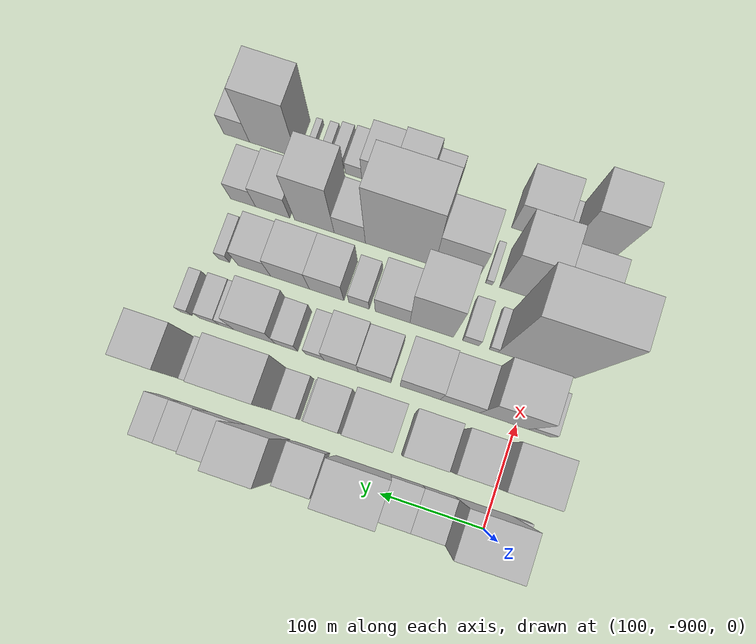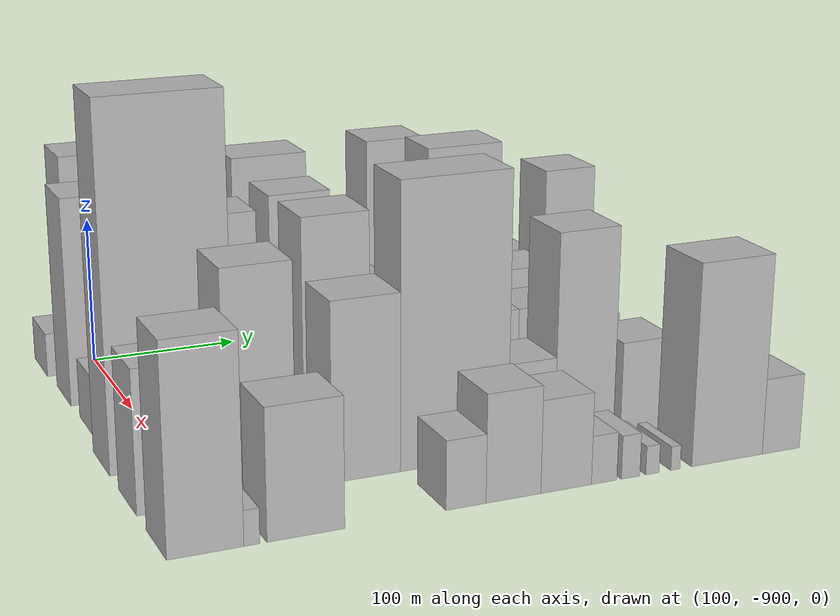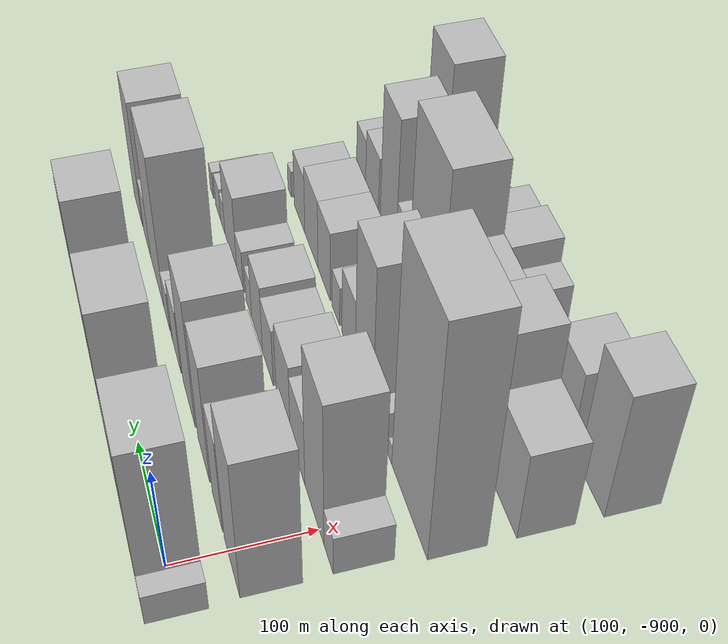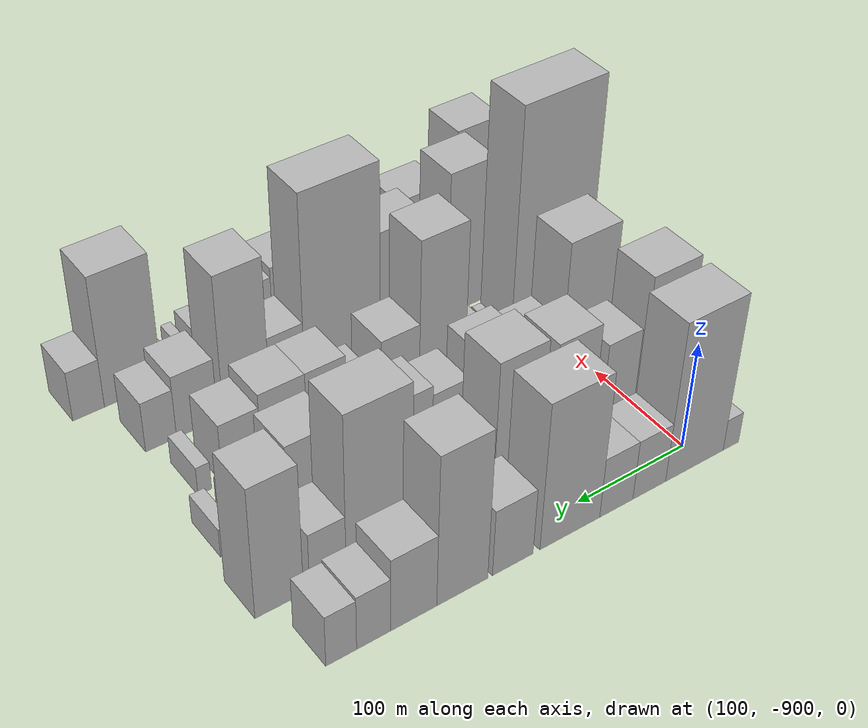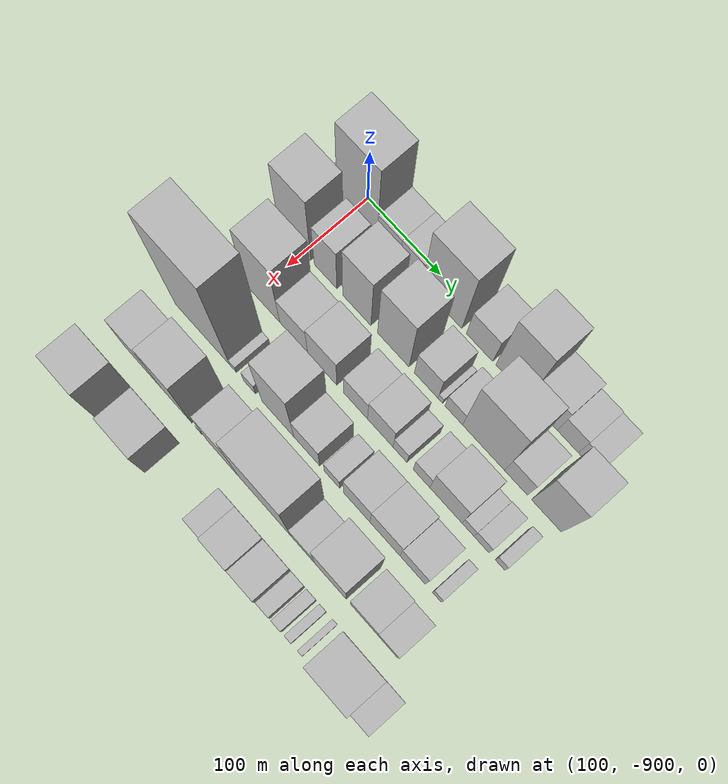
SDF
<sdf version="1.6">
 <world name="default">
  <model name="building_1">
   <static>1</static>
   <pose>100.0000 -929.3016 0 0.000000 0.000000 0.000000</pose>
   <link name="link">
    <pose>0 0 15.00 0 0 0</pose>
    <collision name="collision"><geometry><box><size>40.0000 15.3967 30.0000</size></box></geometry></collision>
    <visual name="visual">
     <cast_shadows>0</cast_shadows>
     <geometry><box><size>40.0000 15.3967 30.0000</size></box></geometry>
     <material>
      <script>
       <uri>model://HANNAS_wall/materials/scripts</uri>
       <uri>model://HANNAS_wall/materials/textures</uri>
       <name>vrc/HANNAS_wall</name>
      </script>
     </material>
    </visual>
   </link>
  </model>
  <model name="building_2">
   <static>1</static>
   <pose>100.0000 -893.4922 0 0.000000 0.000000 0.000000</pose>
   <link name="link">
    <pose>0 0 75.00 0 0 0</pose>
    <collision name="collision"><geometry><box><size>40.0000 56.2221 150.0000</size></box></geometry></collision>
    <visual name="visual">
     <cast_shadows>0</cast_shadows>
     <geometry><box><size>40.0000 56.2221 150.0000</size></box></geometry>
     <material>
      <script>
       <uri>model://HANNAS_wall/materials/scripts</uri>
       <uri>model://HANNAS_wall/materials/textures</uri>
       <name>vrc/HANNAS_wall</name>
      </script>
     </material>
    </visual>
   </link>
  </model>
  <model name="building_3">
   <static>1</static>
   <pose>100.0000 -849.8862 0 0.000000 0.000000 0.000000</pose>
   <link name="link">
    <pose>0 0 28.50 0 0 0</pose>
    <collision name="collision"><geometry><box><size>40.0000 30.9899 57.0000</size></box></geometry></collision>
    <visual name="visual">
     <cast_shadows>0</cast_shadows>
     <geometry><box><size>40.0000 30.9899 57.0000</size></box></geometry>
     <material>
      <script>
       <uri>model://HANNAS_wall/materials/scripts</uri>
       <uri>model://HANNAS_wall/materials/textures</uri>
       <name>vrc/HANNAS_wall</name>
      </script>
     </material>
    </visual>
   </link>
  </model>
  <model name="building_4">
   <static>1</static>
   <pose>100.0000 -818.9883 0 0.000000 0.000000 0.000000</pose>
   <link name="link">
    <pose>0 0 28.50 0 0 0</pose>
    <collision name="collision"><geometry><box><size>40.0000 30.8057 57.0000</size></box></geometry></collision>
    <visual name="visual">
     <cast_shadows>0</cast_shadows>
     <geometry><box><size>40.0000 30.8057 57.0000</size></box></geometry>
     <material>
      <script>
       <uri>model://HANNAS_wall/materials/scripts</uri>
       <uri>model://HANNAS_wall/materials/textures</uri>
       <name>vrc/HANNAS_wall</name>
      </script>
     </material>
    </visual>
   </link>
  </model>
  <model name="building_5">
   <static>1</static>
   <pose>100.0000 -776.6667 0 0.000000 0.000000 0.000000</pose>
   <link name="link">
    <pose>0 0 69.00 0 0 0</pose>
    <collision name="collision"><geometry><box><size>40.0000 53.8375 138.0000</size></box></geometry></collision>
    <visual name="visual">
     <cast_shadows>0</cast_shadows>
     <geometry><box><size>40.0000 53.8375 138.0000</size></box></geometry>
     <material>
      <script>
       <uri>model://HANNAS_wall/materials/scripts</uri>
       <uri>model://HANNAS_wall/materials/textures</uri>
       <name>vrc/HANNAS_wall</name>
      </script>
     </material>
    </visual>
   </link>
  </model>
  <model name="building_6">
   <static>1</static>
   <pose>100.0000 -726.1244 0 0.000000 0.000000 0.000000</pose>
   <link name="link">
    <pose>0 0 31.50 0 0 0</pose>
    <collision name="collision"><geometry><box><size>40.0000 35.2472 63.0000</size></box></geometry></collision>
    <visual name="visual">
     <cast_shadows>0</cast_shadows>
     <geometry><box><size>40.0000 35.2472 63.0000</size></box></geometry>
     <material>
      <script>
       <uri>model://HANNAS_wall/materials/scripts</uri>
       <uri>model://HANNAS_wall/materials/textures</uri>
       <name>vrc/HANNAS_wall</name>
      </script>
     </material>
    </visual>
   </link>
  </model>
  <model name="building_7">
   <static>1</static>
   <pose>100.0000 -683.0421 0 0.000000 0.000000 0.000000</pose>
   <link name="link">
    <pose>0 0 70.50 0 0 0</pose>
    <collision name="collision"><geometry><box><size>40.0000 42.9173 141.0000</size></box></geometry></collision>
    <visual name="visual">
     <cast_shadows>0</cast_shadows>
     <geometry><box><size>40.0000 42.9173 141.0000</size></box></geometry>
     <material>
      <script>
       <uri>model://HANNAS_wall/materials/scripts</uri>
       <uri>model://HANNAS_wall/materials/textures</uri>
       <name>vrc/HANNAS_wall</name>
      </script>
     </material>
    </visual>
   </link>
  </model>
  <model name="building_8">
   <static>1</static>
   <pose>100.0000 -642.8256 0 0.000000 0.000000 0.000000</pose>
   <link name="link">
    <pose>0 0 34.50 0 0 0</pose>
    <collision name="collision"><geometry><box><size>40.0000 37.5158 69.0000</size></box></geometry></collision>
    <visual name="visual">
     <cast_shadows>0</cast_shadows>
     <geometry><box><size>40.0000 37.5158 69.0000</size></box></geometry>
     <material>
      <script>
       <uri>model://HANNAS_wall/materials/scripts</uri>
       <uri>model://HANNAS_wall/materials/textures</uri>
       <name>vrc/HANNAS_wall</name>
      </script>
     </material>
    </visual>
   </link>
  </model>
  <model name="building_9">
   <static>1</static>
   <pose>100.0000 -610.5062 0 0.000000 0.000000 0.000000</pose>
   <link name="link">
    <pose>0 0 25.50 0 0 0</pose>
    <collision name="collision"><geometry><box><size>40.0000 27.1230 51.0000</size></box></geometry></collision>
    <visual name="visual">
     <cast_shadows>0</cast_shadows>
     <geometry><box><size>40.0000 27.1230 51.0000</size></box></geometry>
     <material>
      <script>
       <uri>model://HANNAS_wall/materials/scripts</uri>
       <uri>model://HANNAS_wall/materials/textures</uri>
       <name>vrc/HANNAS_wall</name>
      </script>
     </material>
    </visual>
   </link>
  </model>
  <model name="building_10">
   <static>1</static>
   <pose>100.0000 -584.9254 0 0.000000 0.000000 0.000000</pose>
   <link name="link">
    <pose>0 0 24.00 0 0 0</pose>
    <collision name="collision"><geometry><box><size>40.0000 24.0384 48.0000</size></box></geometry></collision>
    <visual name="visual">
     <cast_shadows>0</cast_shadows>
     <geometry><box><size>40.0000 24.0384 48.0000</size></box></geometry>
     <material>
      <script>
       <uri>model://HANNAS_wall/materials/scripts</uri>
       <uri>model://HANNAS_wall/materials/textures</uri>
       <name>vrc/HANNAS_wall</name>
      </script>
     </material>
    </visual>
   </link>
  </model>
  <model name="building_52">
   <static>1</static>
   <pose>160.0000 -912.4431 0 0.000000 0.000000 0.000000</pose>
   <link name="link">
    <pose>0 0 69.00 0 0 0</pose>
    <collision name="collision"><geometry><box><size>40.0000 45.1138 138.0000</size></box></geometry></collision>
    <visual name="visual">
     <cast_shadows>0</cast_shadows>
     <geometry><box><size>40.0000 45.1138 138.0000</size></box></geometry>
     <material>
      <script>
       <uri>model://HANNAS_wall/materials/scripts</uri>
       <uri>model://HANNAS_wall/materials/textures</uri>
       <name>vrc/HANNAS_wall</name>
      </script>
     </material>
    </visual>
   </link>
  </model>
  <model name="building_53">
   <static>1</static>
   <pose>160.0000 -869.1691 0 0.000000 0.000000 0.000000</pose>
   <link name="link">
    <pose>0 0 46.50 0 0 0</pose>
    <collision name="collision"><geometry><box><size>40.0000 31.4341 93.0000</size></box></geometry></collision>
    <visual name="visual">
     <cast_shadows>0</cast_shadows>
     <geometry><box><size>40.0000 31.4341 93.0000</size></box></geometry>
     <material>
      <script>
       <uri>model://HANNAS_wall/materials/scripts</uri>
       <uri>model://HANNAS_wall/materials/textures</uri>
       <name>vrc/HANNAS_wall</name>
      </script>
     </material>
    </visual>
   </link>
  </model>
  <model name="building_54">
   <static>1</static>
   <pose>160.0000 -826.1210 0 0.000000 0.000000 0.000000</pose>
   <link name="link">
    <pose>0 0 58.50 0 0 0</pose>
    <collision name="collision"><geometry><box><size>40.0000 38.6621 117.0000</size></box></geometry></collision>
    <visual name="visual">
     <cast_shadows>0</cast_shadows>
     <geometry><box><size>40.0000 38.6621 117.0000</size></box></geometry>
     <material>
      <script>
       <uri>model://HANNAS_wall/materials/scripts</uri>
       <uri>model://HANNAS_wall/materials/textures</uri>
       <name>vrc/HANNAS_wall</name>
      </script>
     </material>
    </visual>
   </link>
  </model>
  <model name="building_55">
   <static>1</static>
   <pose>160.0000 -776.3998 0 0.000000 0.000000 0.000000</pose>
   <link name="link">
    <pose>0 0 63.00 0 0 0</pose>
    <collision name="collision"><geometry><box><size>40.0000 42.7803 126.0000</size></box></geometry></collision>
    <visual name="visual">
     <cast_shadows>0</cast_shadows>
     <geometry><box><size>40.0000 42.7803 126.0000</size></box></geometry>
     <material>
      <script>
       <uri>model://HANNAS_wall/materials/scripts</uri>
       <uri>model://HANNAS_wall/materials/textures</uri>
       <name>vrc/HANNAS_wall</name>
      </script>
     </material>
    </visual>
   </link>
  </model>
  <model name="building_56">
   <static>1</static>
   <pose>160.0000 -732.1284 0 0.000000 0.000000 0.000000</pose>
   <link name="link">
    <pose>0 0 31.50 0 0 0</pose>
    <collision name="collision"><geometry><box><size>40.0000 31.7627 63.0000</size></box></geometry></collision>
    <visual name="visual">
     <cast_shadows>0</cast_shadows>
     <geometry><box><size>40.0000 31.7627 63.0000</size></box></geometry>
     <material>
      <script>
       <uri>model://HANNAS_wall/materials/scripts</uri>
       <uri>model://HANNAS_wall/materials/textures</uri>
       <name>vrc/HANNAS_wall</name>
      </script>
     </material>
    </visual>
   </link>
  </model>
  <model name="building_57">
   <static>1</static>
   <pose>160.0000 -713.1230 0 0.000000 0.000000 0.000000</pose>
   <link name="link">
    <pose>0 0 7.50 0 0 0</pose>
    <collision name="collision"><geometry><box><size>40.0000 6.2481 15.0000</size></box></geometry></collision>
    <visual name="visual">
     <cast_shadows>0</cast_shadows>
     <geometry><box><size>40.0000 6.2481 15.0000</size></box></geometry>
     <material>
      <script>
       <uri>model://HANNAS_wall/materials/scripts</uri>
       <uri>model://HANNAS_wall/materials/textures</uri>
       <name>vrc/HANNAS_wall</name>
      </script>
     </material>
    </visual>
   </link>
  </model>
  <model name="building_58">
   <static>1</static>
   <pose>160.0000 -695.3463 0 0.000000 0.000000 0.000000</pose>
   <link name="link">
    <pose>0 0 19.50 0 0 0</pose>
    <collision name="collision"><geometry><box><size>40.0000 23.3052 39.0000</size></box></geometry></collision>
    <visual name="visual">
     <cast_shadows>0</cast_shadows>
     <geometry><box><size>40.0000 23.3052 39.0000</size></box></geometry>
     <material>
      <script>
       <uri>model://HANNAS_wall/materials/scripts</uri>
       <uri>model://HANNAS_wall/materials/textures</uri>
       <name>vrc/HANNAS_wall</name>
      </script>
     </material>
    </visual>
   </link>
  </model>
  <model name="building_59">
   <static>1</static>
   <pose>160.0000 -656.1597 0 0.000000 0.000000 0.000000</pose>
   <link name="link">
    <pose>0 0 73.50 0 0 0</pose>
    <collision name="collision"><geometry><box><size>40.0000 55.0679 147.0000</size></box></geometry></collision>
    <visual name="visual">
     <cast_shadows>0</cast_shadows>
     <geometry><box><size>40.0000 55.0679 147.0000</size></box></geometry>
     <material>
      <script>
       <uri>model://HANNAS_wall/materials/scripts</uri>
       <uri>model://HANNAS_wall/materials/textures</uri>
       <name>vrc/HANNAS_wall</name>
      </script>
     </material>
    </visual>
   </link>
  </model>
  <model name="building_60">
   <static>1</static>
   <pose>160.0000 -613.8279 0 0.000000 0.000000 0.000000</pose>
   <link name="link">
    <pose>0 0 27.00 0 0 0</pose>
    <collision name="collision"><geometry><box><size>40.0000 29.5957 54.0000</size></box></geometry></collision>
    <visual name="visual">
     <cast_shadows>0</cast_shadows>
     <geometry><box><size>40.0000 29.5957 54.0000</size></box></geometry>
     <material>
      <script>
       <uri>model://HANNAS_wall/materials/scripts</uri>
       <uri>model://HANNAS_wall/materials/textures</uri>
       <name>vrc/HANNAS_wall</name>
      </script>
     </material>
    </visual>
   </link>
  </model>
  <model name="building_61">
   <static>1</static>
   <pose>160.0000 -574.8595 0 0.000000 0.000000 0.000000</pose>
   <link name="link">
    <pose>0 0 61.50 0 0 0</pose>
    <collision name="collision"><geometry><box><size>40.0000 38.3412 123.0000</size></box></geometry></collision>
    <visual name="visual">
     <cast_shadows>0</cast_shadows>
     <geometry><box><size>40.0000 38.3412 123.0000</size></box></geometry>
     <material>
      <script>
       <uri>model://HANNAS_wall/materials/scripts</uri>
       <uri>model://HANNAS_wall/materials/textures</uri>
       <name>vrc/HANNAS_wall</name>
      </script>
     </material>
    </visual>
   </link>
  </model>
  <model name="building_107">
   <static>1</static>
   <pose>220.0000 -922.7715 0 0.000000 0.000000 0.000000</pose>
   <link name="link">
    <pose>0 0 19.50 0 0 0</pose>
    <collision name="collision"><geometry><box><size>40.0000 22.4570 39.0000</size></box></geometry></collision>
    <visual name="visual">
     <cast_shadows>0</cast_shadows>
     <geometry><box><size>40.0000 22.4570 39.0000</size></box></geometry>
     <material>
      <script>
       <uri>model://HANNAS_wall/materials/scripts</uri>
       <uri>model://HANNAS_wall/materials/textures</uri>
       <name>vrc/HANNAS_wall</name>
      </script>
     </material>
    </visual>
   </link>
  </model>
  <model name="building_108">
   <static>1</static>
   <pose>220.0000 -887.7573 0 0.000000 0.000000 0.000000</pose>
   <link name="link">
    <pose>0 0 70.50 0 0 0</pose>
    <collision name="collision"><geometry><box><size>40.0000 47.5714 141.0000</size></box></geometry></collision>
    <visual name="visual">
     <cast_shadows>0</cast_shadows>
     <geometry><box><size>40.0000 47.5714 141.0000</size></box></geometry>
     <material>
      <script>
       <uri>model://HANNAS_wall/materials/scripts</uri>
       <uri>model://HANNAS_wall/materials/textures</uri>
       <name>vrc/HANNAS_wall</name>
      </script>
     </material>
    </visual>
   </link>
  </model>
  <model name="building_109">
   <static>1</static>
   <pose>220.0000 -844.7055 0 0.000000 0.000000 0.000000</pose>
   <link name="link">
    <pose>0 0 33.00 0 0 0</pose>
    <collision name="collision"><geometry><box><size>40.0000 38.5321 66.0000</size></box></geometry></collision>
    <visual name="visual">
     <cast_shadows>0</cast_shadows>
     <geometry><box><size>40.0000 38.5321 66.0000</size></box></geometry>
     <material>
      <script>
       <uri>model://HANNAS_wall/materials/scripts</uri>
       <uri>model://HANNAS_wall/materials/textures</uri>
       <name>vrc/HANNAS_wall</name>
      </script>
     </material>
    </visual>
   </link>
  </model>
  <model name="building_110">
   <static>1</static>
   <pose>220.0000 -805.4856 0 0.000000 0.000000 0.000000</pose>
   <link name="link">
    <pose>0 0 37.50 0 0 0</pose>
    <collision name="collision"><geometry><box><size>40.0000 39.9078 75.0000</size></box></geometry></collision>
    <visual name="visual">
     <cast_shadows>0</cast_shadows>
     <geometry><box><size>40.0000 39.9078 75.0000</size></box></geometry>
     <material>
      <script>
       <uri>model://HANNAS_wall/materials/scripts</uri>
       <uri>model://HANNAS_wall/materials/textures</uri>
       <name>vrc/HANNAS_wall</name>
      </script>
     </material>
    </visual>
   </link>
  </model>
  <model name="building_111">
   <static>1</static>
   <pose>220.0000 -760.3452 0 0.000000 0.000000 0.000000</pose>
   <link name="link">
    <pose>0 0 28.50 0 0 0</pose>
    <collision name="collision"><geometry><box><size>40.0000 32.3730 57.0000</size></box></geometry></collision>
    <visual name="visual">
     <cast_shadows>0</cast_shadows>
     <geometry><box><size>40.0000 32.3730 57.0000</size></box></geometry>
     <material>
      <script>
       <uri>model://HANNAS_wall/materials/scripts</uri>
       <uri>model://HANNAS_wall/materials/textures</uri>
       <name>vrc/HANNAS_wall</name>
      </script>
     </material>
    </visual>
   </link>
  </model>
  <model name="building_112">
   <static>1</static>
   <pose>220.0000 -727.1563 0 0.000000 0.000000 0.000000</pose>
   <link name="link">
    <pose>0 0 33.00 0 0 0</pose>
    <collision name="collision"><geometry><box><size>40.0000 34.0048 66.0000</size></box></geometry></collision>
    <visual name="visual">
     <cast_shadows>0</cast_shadows>
     <geometry><box><size>40.0000 34.0048 66.0000</size></box></geometry>
     <material>
      <script>
       <uri>model://HANNAS_wall/materials/scripts</uri>
       <uri>model://HANNAS_wall/materials/textures</uri>
       <name>vrc/HANNAS_wall</name>
      </script>
     </material>
    </visual>
   </link>
  </model>
  <model name="building_113">
   <static>1</static>
   <pose>220.0000 -700.8088 0 0.000000 0.000000 0.000000</pose>
   <link name="link">
    <pose>0 0 18.00 0 0 0</pose>
    <collision name="collision"><geometry><box><size>40.0000 18.6902 36.0000</size></box></geometry></collision>
    <visual name="visual">
     <cast_shadows>0</cast_shadows>
     <geometry><box><size>40.0000 18.6902 36.0000</size></box></geometry>
     <material>
      <script>
       <uri>model://HANNAS_wall/materials/scripts</uri>
       <uri>model://HANNAS_wall/materials/textures</uri>
       <name>vrc/HANNAS_wall</name>
      </script>
     </material>
    </visual>
   </link>
  </model>
  <model name="building_114">
   <static>1</static>
   <pose>220.0000 -672.4171 0 0.000000 0.000000 0.000000</pose>
   <link name="link">
    <pose>0 0 21.00 0 0 0</pose>
    <collision name="collision"><geometry><box><size>40.0000 22.0933 42.0000</size></box></geometry></collision>
    <visual name="visual">
     <cast_shadows>0</cast_shadows>
     <geometry><box><size>40.0000 22.0933 42.0000</size></box></geometry>
     <material>
      <script>
       <uri>model://HANNAS_wall/materials/scripts</uri>
       <uri>model://HANNAS_wall/materials/textures</uri>
       <name>vrc/HANNAS_wall</name>
      </script>
     </material>
    </visual>
   </link>
  </model>
  <model name="building_115">
   <static>1</static>
   <pose>220.0000 -640.3856 0 0.000000 0.000000 0.000000</pose>
   <link name="link">
    <pose>0 0 37.50 0 0 0</pose>
    <collision name="collision"><geometry><box><size>40.0000 41.9696 75.0000</size></box></geometry></collision>
    <visual name="visual">
     <cast_shadows>0</cast_shadows>
     <geometry><box><size>40.0000 41.9696 75.0000</size></box></geometry>
     <material>
      <script>
       <uri>model://HANNAS_wall/materials/scripts</uri>
       <uri>model://HANNAS_wall/materials/textures</uri>
       <name>vrc/HANNAS_wall</name>
      </script>
     </material>
    </visual>
   </link>
  </model>
  <model name="building_116">
   <static>1</static>
   <pose>220.0000 -611.7557 0 0.000000 0.000000 0.000000</pose>
   <link name="link">
    <pose>0 0 15.00 0 0 0</pose>
    <collision name="collision"><geometry><box><size>40.0000 15.2903 30.0000</size></box></geometry></collision>
    <visual name="visual">
     <cast_shadows>0</cast_shadows>
     <geometry><box><size>40.0000 15.2903 30.0000</size></box></geometry>
     <material>
      <script>
       <uri>model://HANNAS_wall/materials/scripts</uri>
       <uri>model://HANNAS_wall/materials/textures</uri>
       <name>vrc/HANNAS_wall</name>
      </script>
     </material>
    </visual>
   </link>
  </model>
  <model name="building_117">
   <static>1</static>
   <pose>220.0000 -594.4015 0 0.000000 0.000000 0.000000</pose>
   <link name="link">
    <pose>0 0 16.50 0 0 0</pose>
    <collision name="collision"><geometry><box><size>40.0000 19.4182 33.0000</size></box></geometry></collision>
    <visual name="visual">
     <cast_shadows>0</cast_shadows>
     <geometry><box><size>40.0000 19.4182 33.0000</size></box></geometry>
     <material>
      <script>
       <uri>model://HANNAS_wall/materials/scripts</uri>
       <uri>model://HANNAS_wall/materials/textures</uri>
       <name>vrc/HANNAS_wall</name>
      </script>
     </material>
    </visual>
   </link>
  </model>
  <model name="building_118">
   <static>1</static>
   <pose>220.0000 -570.5950 0 0.000000 0.000000 0.000000</pose>
   <link name="link">
    <pose>0 0 13.50 0 0 0</pose>
    <collision name="collision"><geometry><box><size>40.0000 12.1947 27.0000</size></box></geometry></collision>
    <visual name="visual">
     <cast_shadows>0</cast_shadows>
     <geometry><box><size>40.0000 12.1947 27.0000</size></box></geometry>
     <material>
      <script>
       <uri>model://HANNAS_wall/materials/scripts</uri>
       <uri>model://HANNAS_wall/materials/textures</uri>
       <name>vrc/HANNAS_wall</name>
      </script>
     </material>
    </visual>
   </link>
  </model>
  <model name="building_164">
   <static>1</static>
   <pose>280.0000 -901.7211 0 0.000000 0.000000 0.000000</pose>
   <link name="link">
    <pose>0 0 112.50 0 0 0</pose>
    <collision name="collision"><geometry><box><size>40.0000 76.5577 225.0000</size></box></geometry></collision>
    <visual name="visual">
     <cast_shadows>0</cast_shadows>
     <geometry><box><size>40.0000 76.5577 225.0000</size></box></geometry>
     <material>
      <script>
       <uri>model://HANNAS_wall/materials/scripts</uri>
       <uri>model://HANNAS_wall/materials/textures</uri>
       <name>vrc/HANNAS_wall</name>
      </script>
     </material>
    </visual>
   </link>
  </model>
  <model name="building_165">
   <static>1</static>
   <pose>280.0000 -858.9648 0 0.000000 0.000000 0.000000</pose>
   <link name="link">
    <pose>0 0 9.00 0 0 0</pose>
    <collision name="collision"><geometry><box><size>40.0000 8.9550 18.0000</size></box></geometry></collision>
    <visual name="visual">
     <cast_shadows>0</cast_shadows>
     <geometry><box><size>40.0000 8.9550 18.0000</size></box></geometry>
     <material>
      <script>
       <uri>model://HANNAS_wall/materials/scripts</uri>
       <uri>model://HANNAS_wall/materials/textures</uri>
       <name>vrc/HANNAS_wall</name>
      </script>
     </material>
    </visual>
   </link>
  </model>
  <model name="building_166">
   <static>1</static>
   <pose>280.0000 -836.1534 0 0.000000 0.000000 0.000000</pose>
   <link name="link">
    <pose>0 0 15.00 0 0 0</pose>
    <collision name="collision"><geometry><box><size>40.0000 16.6679 30.0000</size></box></geometry></collision>
    <visual name="visual">
     <cast_shadows>0</cast_shadows>
     <geometry><box><size>40.0000 16.6679 30.0000</size></box></geometry>
     <material>
      <script>
       <uri>model://HANNAS_wall/materials/scripts</uri>
       <uri>model://HANNAS_wall/materials/textures</uri>
       <name>vrc/HANNAS_wall</name>
      </script>
     </material>
    </visual>
   </link>
  </model>
  <model name="building_167">
   <static>1</static>
   <pose>280.0000 -797.0618 0 0.000000 0.000000 0.000000</pose>
   <link name="link">
    <pose>0 0 72.00 0 0 0</pose>
    <collision name="collision"><geometry><box><size>40.0000 43.5152 144.0000</size></box></geometry></collision>
    <visual name="visual">
     <cast_shadows>0</cast_shadows>
     <geometry><box><size>40.0000 43.5152 144.0000</size></box></geometry>
     <material>
      <script>
       <uri>model://HANNAS_wall/materials/scripts</uri>
       <uri>model://HANNAS_wall/materials/textures</uri>
       <name>vrc/HANNAS_wall</name>
      </script>
     </material>
    </visual>
   </link>
  </model>
  <model name="building_168">
   <static>1</static>
   <pose>280.0000 -757.8696 0 0.000000 0.000000 0.000000</pose>
   <link name="link">
    <pose>0 0 33.00 0 0 0</pose>
    <collision name="collision"><geometry><box><size>40.0000 34.8691 66.0000</size></box></geometry></collision>
    <visual name="visual">
     <cast_shadows>0</cast_shadows>
     <geometry><box><size>40.0000 34.8691 66.0000</size></box></geometry>
     <material>
      <script>
       <uri>model://HANNAS_wall/materials/scripts</uri>
       <uri>model://HANNAS_wall/materials/textures</uri>
       <name>vrc/HANNAS_wall</name>
      </script>
     </material>
    </visual>
   </link>
  </model>
  <model name="building_169">
   <static>1</static>
   <pose>280.0000 -724.1842 0 0.000000 0.000000 0.000000</pose>
   <link name="link">
    <pose>0 0 19.50 0 0 0</pose>
    <collision name="collision"><geometry><box><size>40.0000 20.5017 39.0000</size></box></geometry></collision>
    <visual name="visual">
     <cast_shadows>0</cast_shadows>
     <geometry><box><size>40.0000 20.5017 39.0000</size></box></geometry>
     <material>
      <script>
       <uri>model://HANNAS_wall/materials/scripts</uri>
       <uri>model://HANNAS_wall/materials/textures</uri>
       <name>vrc/HANNAS_wall</name>
      </script>
     </material>
    </visual>
   </link>
  </model>
  <model name="building_170">
   <static>1</static>
   <pose>280.0000 -691.3929 0 0.000000 0.000000 0.000000</pose>
   <link name="link">
    <pose>0 0 34.50 0 0 0</pose>
    <collision name="collision"><geometry><box><size>40.0000 35.0808 69.0000</size></box></geometry></collision>
    <visual name="visual">
     <cast_shadows>0</cast_shadows>
     <geometry><box><size>40.0000 35.0808 69.0000</size></box></geometry>
     <material>
      <script>
       <uri>model://HANNAS_wall/materials/scripts</uri>
       <uri>model://HANNAS_wall/materials/textures</uri>
       <name>vrc/HANNAS_wall</name>
      </script>
     </material>
    </visual>
   </link>
  </model>
  <model name="building_171">
   <static>1</static>
   <pose>280.0000 -654.1789 0 0.000000 0.000000 0.000000</pose>
   <link name="link">
    <pose>0 0 34.50 0 0 0</pose>
    <collision name="collision"><geometry><box><size>40.0000 39.3473 69.0000</size></box></geometry></collision>
    <visual name="visual">
     <cast_shadows>0</cast_shadows>
     <geometry><box><size>40.0000 39.3473 69.0000</size></box></geometry>
     <material>
      <script>
       <uri>model://HANNAS_wall/materials/scripts</uri>
       <uri>model://HANNAS_wall/materials/textures</uri>
       <name>vrc/HANNAS_wall</name>
      </script>
     </material>
    </visual>
   </link>
  </model>
  <model name="building_172">
   <static>1</static>
   <pose>280.0000 -617.9237 0 0.000000 0.000000 0.000000</pose>
   <link name="link">
    <pose>0 0 28.50 0 0 0</pose>
    <collision name="collision"><geometry><box><size>40.0000 33.1630 57.0000</size></box></geometry></collision>
    <visual name="visual">
     <cast_shadows>0</cast_shadows>
     <geometry><box><size>40.0000 33.1630 57.0000</size></box></geometry>
     <material>
      <script>
       <uri>model://HANNAS_wall/materials/scripts</uri>
       <uri>model://HANNAS_wall/materials/textures</uri>
       <name>vrc/HANNAS_wall</name>
      </script>
     </material>
    </visual>
   </link>
  </model>
  <model name="building_173">
   <static>1</static>
   <pose>280.0000 -586.6849 0 0.000000 0.000000 0.000000</pose>
   <link name="link">
    <pose>0 0 13.50 0 0 0</pose>
    <collision name="collision"><geometry><box><size>40.0000 11.3145 27.0000</size></box></geometry></collision>
    <visual name="visual">
     <cast_shadows>0</cast_shadows>
     <geometry><box><size>40.0000 11.3145 27.0000</size></box></geometry>
     <material>
      <script>
       <uri>model://HANNAS_wall/materials/scripts</uri>
       <uri>model://HANNAS_wall/materials/textures</uri>
       <name>vrc/HANNAS_wall</name>
      </script>
     </material>
    </visual>
   </link>
  </model>
  <model name="building_215">
   <static>1</static>
   <pose>340.0000 -914.1154 0 0.000000 0.000000 0.000000</pose>
   <link name="link">
    <pose>0 0 43.50 0 0 0</pose>
    <collision name="collision"><geometry><box><size>40.0000 51.7692 87.0000</size></box></geometry></collision>
    <visual name="visual">
     <cast_shadows>0</cast_shadows>
     <geometry><box><size>40.0000 51.7692 87.0000</size></box></geometry>
     <material>
      <script>
       <uri>model://HANNAS_wall/materials/scripts</uri>
       <uri>model://HANNAS_wall/materials/textures</uri>
       <name>vrc/HANNAS_wall</name>
      </script>
     </material>
    </visual>
   </link>
  </model>
  <model name="building_216">
   <static>1</static>
   <pose>340.0000 -866.9586 0 0.000000 0.000000 0.000000</pose>
   <link name="link">
    <pose>0 0 69.00 0 0 0</pose>
    <collision name="collision"><geometry><box><size>40.0000 42.5443 138.0000</size></box></geometry></collision>
    <visual name="visual">
     <cast_shadows>0</cast_shadows>
     <geometry><box><size>40.0000 42.5443 138.0000</size></box></geometry>
     <material>
      <script>
       <uri>model://HANNAS_wall/materials/scripts</uri>
       <uri>model://HANNAS_wall/materials/textures</uri>
       <name>vrc/HANNAS_wall</name>
      </script>
     </material>
    </visual>
   </link>
  </model>
  <model name="building_217">
   <static>1</static>
   <pose>340.0000 -835.2057 0 0.000000 0.000000 0.000000</pose>
   <link name="link">
    <pose>0 0 7.50 0 0 0</pose>
    <collision name="collision"><geometry><box><size>40.0000 6.9615 15.0000</size></box></geometry></collision>
    <visual name="visual">
     <cast_shadows>0</cast_shadows>
     <geometry><box><size>40.0000 6.9615 15.0000</size></box></geometry>
     <material>
      <script>
       <uri>model://HANNAS_wall/materials/scripts</uri>
       <uri>model://HANNAS_wall/materials/textures</uri>
       <name>vrc/HANNAS_wall</name>
      </script>
     </material>
    </visual>
   </link>
  </model>
  <model name="building_218">
   <static>1</static>
   <pose>340.0000 -802.0390 0 0.000000 0.000000 0.000000</pose>
   <link name="link">
    <pose>0 0 55.50 0 0 0</pose>
    <collision name="collision"><geometry><box><size>40.0000 43.3720 111.0000</size></box></geometry></collision>
    <visual name="visual">
     <cast_shadows>0</cast_shadows>
     <geometry><box><size>40.0000 43.3720 111.0000</size></box></geometry>
     <material>
      <script>
       <uri>model://HANNAS_wall/materials/scripts</uri>
       <uri>model://HANNAS_wall/materials/textures</uri>
       <name>vrc/HANNAS_wall</name>
      </script>
     </material>
    </visual>
   </link>
  </model>
  <model name="building_219">
   <static>1</static>
   <pose>340.0000 -745.1186 0 0.000000 0.000000 0.000000</pose>
   <link name="link">
    <pose>0 0 88.50 0 0 0</pose>
    <collision name="collision"><geometry><box><size>40.0000 70.4688 177.0000</size></box></geometry></collision>
    <visual name="visual">
     <cast_shadows>0</cast_shadows>
     <geometry><box><size>40.0000 70.4688 177.0000</size></box></geometry>
     <material>
      <script>
       <uri>model://HANNAS_wall/materials/scripts</uri>
       <uri>model://HANNAS_wall/materials/textures</uri>
       <name>vrc/HANNAS_wall</name>
      </script>
     </material>
    </visual>
   </link>
  </model>
  <model name="building_220">
   <static>1</static>
   <pose>340.0000 -694.0305 0 0.000000 0.000000 0.000000</pose>
   <link name="link">
    <pose>0 0 28.50 0 0 0</pose>
    <collision name="collision"><geometry><box><size>40.0000 31.7073 57.0000</size></box></geometry></collision>
    <visual name="visual">
     <cast_shadows>0</cast_shadows>
     <geometry><box><size>40.0000 31.7073 57.0000</size></box></geometry>
     <material>
      <script>
       <uri>model://HANNAS_wall/materials/scripts</uri>
       <uri>model://HANNAS_wall/materials/textures</uri>
       <name>vrc/HANNAS_wall</name>
      </script>
     </material>
    </visual>
   </link>
  </model>
  <model name="building_221">
   <static>1</static>
   <pose>340.0000 -657.7975 0 0.000000 0.000000 0.000000</pose>
   <link name="link">
    <pose>0 0 67.50 0 0 0</pose>
    <collision name="collision"><geometry><box><size>40.0000 40.7587 135.0000</size></box></geometry></collision>
    <visual name="visual">
     <cast_shadows>0</cast_shadows>
     <geometry><box><size>40.0000 40.7587 135.0000</size></box></geometry>
     <material>
      <script>
       <uri>model://HANNAS_wall/materials/scripts</uri>
       <uri>model://HANNAS_wall/materials/textures</uri>
       <name>vrc/HANNAS_wall</name>
      </script>
     </material>
    </visual>
   </link>
  </model>
  <model name="building_222">
   <static>1</static>
   <pose>340.0000 -614.8282 0 0.000000 0.000000 0.000000</pose>
   <link name="link">
    <pose>0 0 30.00 0 0 0</pose>
    <collision name="collision"><geometry><box><size>40.0000 35.1798 60.0000</size></box></geometry></collision>
    <visual name="visual">
     <cast_shadows>0</cast_shadows>
     <geometry><box><size>40.0000 35.1798 60.0000</size></box></geometry>
     <material>
      <script>
       <uri>model://HANNAS_wall/materials/scripts</uri>
       <uri>model://HANNAS_wall/materials/textures</uri>
       <name>vrc/HANNAS_wall</name>
      </script>
     </material>
    </visual>
   </link>
  </model>
  <model name="building_223">
   <static>1</static>
   <pose>340.0000 -584.2340 0 0.000000 0.000000 0.000000</pose>
   <link name="link">
    <pose>0 0 24.00 0 0 0</pose>
    <collision name="collision"><geometry><box><size>40.0000 26.0087 48.0000</size></box></geometry></collision>
    <visual name="visual">
     <cast_shadows>0</cast_shadows>
     <geometry><box><size>40.0000 26.0087 48.0000</size></box></geometry>
     <material>
      <script>
       <uri>model://HANNAS_wall/materials/scripts</uri>
       <uri>model://HANNAS_wall/materials/textures</uri>
       <name>vrc/HANNAS_wall</name>
      </script>
     </material>
    </visual>
   </link>
  </model>
  <model name="building_263">
   <static>1</static>
   <pose>400.0000 -918.5232 0 0.000000 0.000000 0.000000</pose>
   <link name="link">
    <pose>0 0 61.50 0 0 0</pose>
    <collision name="collision"><geometry><box><size>40.0000 42.9536 123.0000</size></box></geometry></collision>
    <visual name="visual">
     <cast_shadows>0</cast_shadows>
     <geometry><box><size>40.0000 42.9536 123.0000</size></box></geometry>
     <material>
      <script>
       <uri>model://HANNAS_wall/materials/scripts</uri>
       <uri>model://HANNAS_wall/materials/textures</uri>
       <name>vrc/HANNAS_wall</name>
      </script>
     </material>
    </visual>
   </link>
  </model>
  <model name="building_264">
   <static>1</static>
   <pose>400.0000 -892.5343 0 0.000000 0.000000 0.000000</pose>
   <link name="link">
    <pose>0 0 10.50 0 0 0</pose>
    <collision name="collision"><geometry><box><size>40.0000 9.0243 21.0000</size></box></geometry></collision>
    <visual name="visual">
     <cast_shadows>0</cast_shadows>
     <geometry><box><size>40.0000 9.0243 21.0000</size></box></geometry>
     <material>
      <script>
       <uri>model://HANNAS_wall/materials/scripts</uri>
       <uri>model://HANNAS_wall/materials/textures</uri>
       <name>vrc/HANNAS_wall</name>
      </script>
     </material>
    </visual>
   </link>
  </model>
  <model name="building_265">
   <static>1</static>
   <pose>400.0000 -861.4962 0 0.000000 0.000000 0.000000</pose>
   <link name="link">
    <pose>0 0 39.00 0 0 0</pose>
    <collision name="collision"><geometry><box><size>40.0000 45.0519 78.0000</size></box></geometry></collision>
    <visual name="visual">
     <cast_shadows>0</cast_shadows>
     <geometry><box><size>40.0000 45.0519 78.0000</size></box></geometry>
     <material>
      <script>
       <uri>model://HANNAS_wall/materials/scripts</uri>
       <uri>model://HANNAS_wall/materials/textures</uri>
       <name>vrc/HANNAS_wall</name>
      </script>
     </material>
    </visual>
   </link>
  </model>
  <model name="building_266">
   <static>1</static>
   <pose>400.0000 -765.6889 0 0.000000 0.000000 0.000000</pose>
   <link name="link">
    <pose>0 0 21.00 0 0 0</pose>
    <collision name="collision"><geometry><box><size>40.0000 24.8542 42.0000</size></box></geometry></collision>
    <visual name="visual">
     <cast_shadows>0</cast_shadows>
     <geometry><box><size>40.0000 24.8542 42.0000</size></box></geometry>
     <material>
      <script>
       <uri>model://HANNAS_wall/materials/scripts</uri>
       <uri>model://HANNAS_wall/materials/textures</uri>
       <name>vrc/HANNAS_wall</name>
      </script>
     </material>
    </visual>
   </link>
  </model>
  <model name="building_267">
   <static>1</static>
   <pose>400.0000 -735.8502 0 0.000000 0.000000 0.000000</pose>
   <link name="link">
    <pose>0 0 33.00 0 0 0</pose>
    <collision name="collision"><geometry><box><size>40.0000 34.8231 66.0000</size></box></geometry></collision>
    <visual name="visual">
     <cast_shadows>0</cast_shadows>
     <geometry><box><size>40.0000 34.8231 66.0000</size></box></geometry>
     <material>
      <script>
       <uri>model://HANNAS_wall/materials/scripts</uri>
       <uri>model://HANNAS_wall/materials/textures</uri>
       <name>vrc/HANNAS_wall</name>
      </script>
     </material>
    </visual>
   </link>
  </model>
  <model name="building_268">
   <static>1</static>
   <pose>400.0000 -701.9939 0 0.000000 0.000000 0.000000</pose>
   <link name="link">
    <pose>0 0 28.50 0 0 0</pose>
    <collision name="collision"><geometry><box><size>40.0000 32.8896 57.0000</size></box></geometry></collision>
    <visual name="visual">
     <cast_shadows>0</cast_shadows>
     <geometry><box><size>40.0000 32.8896 57.0000</size></box></geometry>
     <material>
      <script>
       <uri>model://HANNAS_wall/materials/scripts</uri>
       <uri>model://HANNAS_wall/materials/textures</uri>
       <name>vrc/HANNAS_wall</name>
      </script>
     </material>
    </visual>
   </link>
  </model>
  <model name="building_269">
   <static>1</static>
   <pose>400.0000 -677.1416 0 0.000000 0.000000 0.000000</pose>
   <link name="link">
    <pose>0 0 15.00 0 0 0</pose>
    <collision name="collision"><geometry><box><size>40.0000 16.8150 30.0000</size></box></geometry></collision>
    <visual name="visual">
     <cast_shadows>0</cast_shadows>
     <geometry><box><size>40.0000 16.8150 30.0000</size></box></geometry>
     <material>
      <script>
       <uri>model://HANNAS_wall/materials/scripts</uri>
       <uri>model://HANNAS_wall/materials/textures</uri>
       <name>vrc/HANNAS_wall</name>
      </script>
     </material>
    </visual>
   </link>
  </model>
  <model name="building_270">
   <static>1</static>
   <pose>400.0000 -659.5462 0 0.000000 0.000000 0.000000</pose>
   <link name="link">
    <pose>0 0 13.50 0 0 0</pose>
    <collision name="collision"><geometry><box><size>40.0000 12.3758 27.0000</size></box></geometry></collision>
    <visual name="visual">
     <cast_shadows>0</cast_shadows>
     <geometry><box><size>40.0000 12.3758 27.0000</size></box></geometry>
     <material>
      <script>
       <uri>model://HANNAS_wall/materials/scripts</uri>
       <uri>model://HANNAS_wall/materials/textures</uri>
       <name>vrc/HANNAS_wall</name>
      </script>
     </material>
    </visual>
   </link>
  </model>
  <model name="building_271">
   <static>1</static>
   <pose>400.0000 -644.8759 0 0.000000 0.000000 0.000000</pose>
   <link name="link">
    <pose>0 0 9.00 0 0 0</pose>
    <collision name="collision"><geometry><box><size>40.0000 8.9648 18.0000</size></box></geometry></collision>
    <visual name="visual">
     <cast_shadows>0</cast_shadows>
     <geometry><box><size>40.0000 8.9648 18.0000</size></box></geometry>
     <material>
      <script>
       <uri>model://HANNAS_wall/materials/scripts</uri>
       <uri>model://HANNAS_wall/materials/textures</uri>
       <name>vrc/HANNAS_wall</name>
      </script>
     </material>
    </visual>
   </link>
  </model>
  <model name="building_272">
   <static>1</static>
   <pose>400.0000 -629.2254 0 0.000000 0.000000 0.000000</pose>
   <link name="link">
    <pose>0 0 7.50 0 0 0</pose>
    <collision name="collision"><geometry><box><size>40.0000 6.3363 15.0000</size></box></geometry></collision>
    <visual name="visual">
     <cast_shadows>0</cast_shadows>
     <geometry><box><size>40.0000 6.3363 15.0000</size></box></geometry>
     <material>
      <script>
       <uri>model://HANNAS_wall/materials/scripts</uri>
       <uri>model://HANNAS_wall/materials/textures</uri>
       <name>vrc/HANNAS_wall</name>
      </script>
     </material>
    </visual>
   </link>
  </model>
  <model name="building_273">
   <static>1</static>
   <pose>400.0000 -593.3527 0 0.000000 0.000000 0.000000</pose>
   <link name="link">
    <pose>0 0 63.00 0 0 0</pose>
    <collision name="collision"><geometry><box><size>40.0000 49.4091 126.0000</size></box></geometry></collision>
    <visual name="visual">
     <cast_shadows>0</cast_shadows>
     <geometry><box><size>40.0000 49.4091 126.0000</size></box></geometry>
     <material>
      <script>
       <uri>model://HANNAS_wall/materials/scripts</uri>
       <uri>model://HANNAS_wall/materials/textures</uri>
       <name>vrc/HANNAS_wall</name>
      </script>
     </material>
    </visual>
   </link>
  </model>
  <model name="building_274">
   <static>1</static>
   <pose>400.0000 -555.3054 0 0.000000 0.000000 0.000000</pose>
   <link name="link">
    <pose>0 0 24.00 0 0 0</pose>
    <collision name="collision"><geometry><box><size>40.0000 26.6855 48.0000</size></box></geometry></collision>
    <visual name="visual">
     <cast_shadows>0</cast_shadows>
     <geometry><box><size>40.0000 26.6855 48.0000</size></box></geometry>
     <material>
      <script>
       <uri>model://HANNAS_wall/materials/scripts</uri>
       <uri>model://HANNAS_wall/materials/textures</uri>
       <name>vrc/HANNAS_wall</name>
      </script>
     </material>
    </visual>
   </link>
  </model>
 </world>
</sdf>
